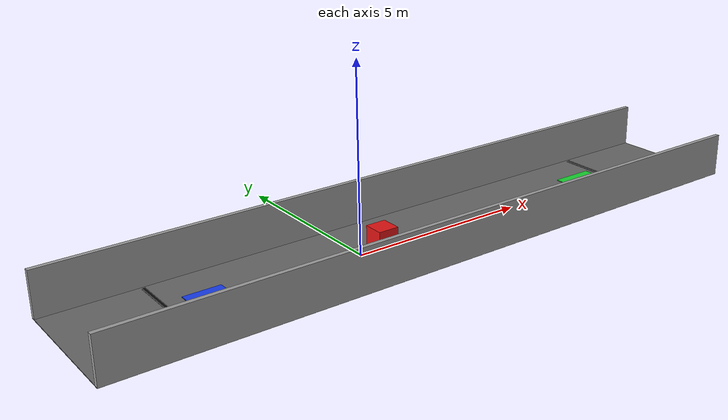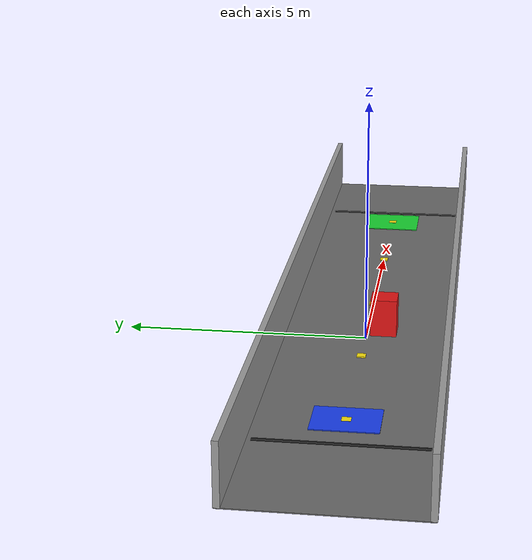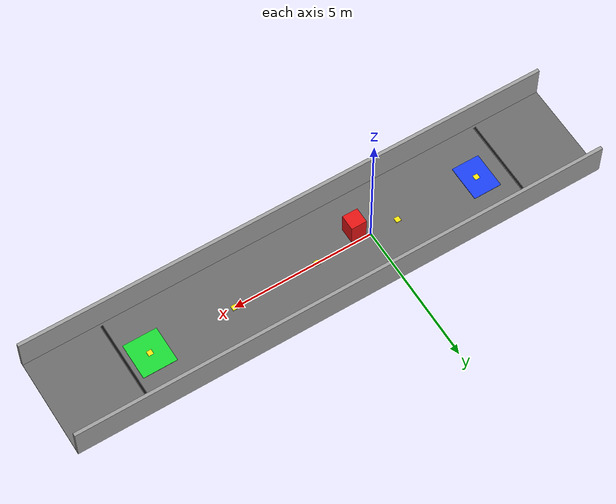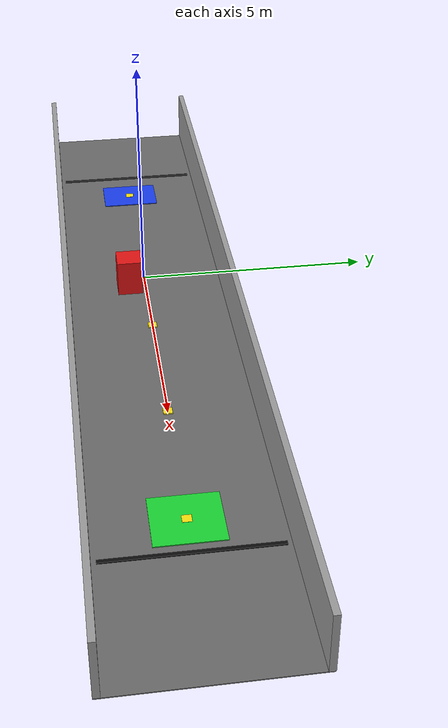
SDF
<?xml version="1.0"?>
<sdf version="1.8">
  <world name="shipyard_corridor_avoidable_world">

    <!-- Core Gazebo / Ignition systems -->
    <physics name="1ms" type="ignored">
      <max_step_size>0.001</max_step_size>
      <real_time_factor>1.0</real_time_factor>
    </physics>

    <plugin filename="ignition-gazebo-physics-system" name="ignition::gazebo::systems::Physics"/>
    <plugin filename="ignition-gazebo-user-commands-system" name="ignition::gazebo::systems::UserCommands"/>
    <plugin filename="ignition-gazebo-scene-broadcaster-system" name="ignition::gazebo::systems::SceneBroadcaster"/>

    <!-- Required for simulated 2D LiDAR / LaserScan -->
    <plugin filename="libignition-gazebo-sensors-system.so" name="ignition::gazebo::systems::Sensors">
      <render_engine>ogre2</render_engine>
    </plugin>

    <!-- Required for simulated IMU -->
    <plugin filename="libignition-gazebo-imu-system.so" name="ignition::gazebo::systems::Imu"/>

    <!-- Indoor-like lighting. Kept simple so the world is easy to view in Gazebo. -->
    <light type="directional" name="overhead_ambient_light">
      <cast_shadows>true</cast_shadows>
      <pose>0 0 10 0 0 0</pose>
      <diffuse>0.85 0.85 0.85 1</diffuse>
      <specular>0.15 0.15 0.15 1</specular>
      <direction>-0.2 0.1 -0.95</direction>
    </light>

    <!-- Mission geometry: simplified indoor shipyard maintenance corridor -->
    <!-- Coordinate convention: robot starts near x=-4.0 and drives toward +x. -->
    <!-- Blue = start zone, green = inspection endpoint. -->

    <model name="corridor_floor">
      <static>true</static>
      <pose>2.0 0 0.0 0 0 0</pose>
      <link name="link">
        <collision name="collision"><geometry><box><size>19.0 3.6 0.02</size></box></geometry></collision>
        <visual name="visual">
          <geometry><box><size>19.0 3.6 0.02</size></box></geometry>
          <material><ambient>0.42 0.42 0.42 1</ambient><diffuse>0.42 0.42 0.42 1</diffuse></material>
        </visual>
      </link>
    </model>

    <model name="left_corridor_wall">
      <static>true</static>
      <pose>2.0 1.75 0.6 0 0 0</pose>
      <link name="link">
        <collision name="collision"><geometry><box><size>19.0 0.12 1.2</size></box></geometry></collision>
        <visual name="visual">
          <geometry><box><size>19.0 0.12 1.2</size></box></geometry>
          <material><ambient>0.62 0.62 0.62 1</ambient><diffuse>0.62 0.62 0.62 1</diffuse></material>
        </visual>
      </link>
    </model>

    <model name="right_corridor_wall">
      <static>true</static>
      <pose>2.0 -1.75 0.6 0 0 0</pose>
      <link name="link">
        <collision name="collision"><geometry><box><size>19.0 0.12 1.2</size></box></geometry></collision>
        <visual name="visual">
          <geometry><box><size>19.0 0.12 1.2</size></box></geometry>
          <material><ambient>0.62 0.62 0.62 1</ambient><diffuse>0.62 0.62 0.62 1</diffuse></material>
        </visual>
      </link>
    </model>

    <model name="start_threshold_line">
      <static>true</static>
      <pose>-5.0 0 0.025 0 0 0</pose>
      <link name="link">
        <visual name="visual">
          <geometry><box><size>0.08 3.2 0.03</size></box></geometry>
          <material><ambient>0.05 0.05 0.05 1</ambient><diffuse>0.05 0.05 0.05 1</diffuse></material>
        </visual>
      </link>
    </model>

    <model name="endpoint_threshold_line">
      <static>true</static>
      <pose>8.8 0 0.025 0 0 0</pose>
      <link name="link">
        <visual name="visual">
          <geometry><box><size>0.08 3.2 0.03</size></box></geometry>
          <material><ambient>0.05 0.05 0.05 1</ambient><diffuse>0.05 0.05 0.05 1</diffuse></material>
        </visual>
      </link>
    </model>

    <model name="start_zone_marker">
      <static>true</static>
      <pose>-4.0 0 0.025 0 0 0</pose>
      <link name="link">
        <visual name="visual">
          <geometry><box><size>1.0 1.3 0.02</size></box></geometry>
          <material><ambient>0.1 0.25 0.95 1</ambient><diffuse>0.1 0.25 0.95 1</diffuse></material>
        </visual>
      </link>
    </model>

    <model name="endpoint_marker">
      <static>true</static>
      <pose>8.0 0 0.025 0 0 0</pose>
      <link name="link">
        <visual name="visual">
          <geometry><box><size>1.2 1.3 0.02</size></box></geometry>
          <material><ambient>0.1 0.85 0.2 1</ambient><diffuse>0.1 0.85 0.2 1</diffuse></material>
        </visual>
      </link>
    </model>

    <model name="start_zone_waypoint_marker">
      <static>true</static>
      <pose>-4.0 0 0.025 0 0 0</pose>
      <link name="link">
        <visual name="visual">
          <geometry><box><size>0.18 0.18 0.025</size></box></geometry>
          <material><ambient>1.0 0.9 0.05 1</ambient><diffuse>1.0 0.9 0.05 1</diffuse></material>
        </visual>
      </link>
    </model>

    <model name="centerline_waypoint_marker_1">
      <static>true</static>
      <pose>-1.0 0 0.03 0 0 0</pose>
      <link name="link">
        <visual name="visual">
          <geometry><box><size>0.18 0.18 0.025</size></box></geometry>
          <material><ambient>1.0 0.9 0.05 1</ambient><diffuse>1.0 0.9 0.05 1</diffuse></material>
        </visual>
      </link>
    </model>

    <model name="centerline_waypoint_marker_2">
      <static>true</static>
      <pose>2.0 0 0.03 0 0 0</pose>
      <link name="link">
        <visual name="visual">
          <geometry><box><size>0.18 0.18 0.025</size></box></geometry>
          <material><ambient>1.0 0.9 0.05 1</ambient><diffuse>1.0 0.9 0.05 1</diffuse></material>
        </visual>
      </link>
    </model>

    <model name="centerline_waypoint_marker_3">
      <static>true</static>
      <pose>5.0 0 0.03 0 0 0</pose>
      <link name="link">
        <visual name="visual">
          <geometry><box><size>0.18 0.18 0.025</size></box></geometry>
          <material><ambient>1.0 0.9 0.05 1</ambient><diffuse>1.0 0.9 0.05 1</diffuse></material>
        </visual>
      </link>
    </model>

    <model name="endpoint_zone_waypoint_marker">
      <static>true</static>
      <pose>8.0 0 0.025 0 0 0</pose>
      <link name="link">
        <visual name="visual">
          <geometry><box><size>0.18 0.18 0.025</size></box></geometry>
          <material><ambient>1.0 0.9 0.05 1</ambient><diffuse>1.0 0.9 0.05 1</diffuse></material>
        </visual>
      </link>
    </model>

    <model name="avoidable_obstruction_red_block">
      <static>true</static>
      <pose>0.4 -0.35 0.4 0 0 0</pose>
      <link name="link">
        <collision name="collision"><geometry><box><size>0.55 0.55 0.8</size></box></geometry></collision>
        <visual name="visual">
          <geometry><box><size>0.55 0.55 0.8</size></box></geometry>
          <material><ambient>0.9 0.08 0.08 1</ambient><diffuse>0.9 0.08 0.08 1</diffuse></material>
        </visual>
      </link>
    </model>

  </world>
</sdf>
